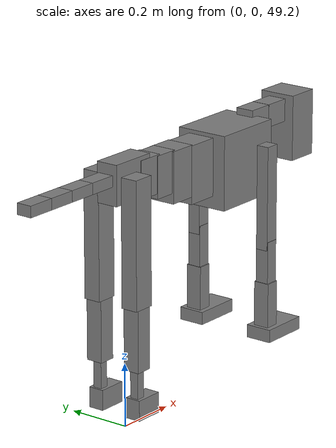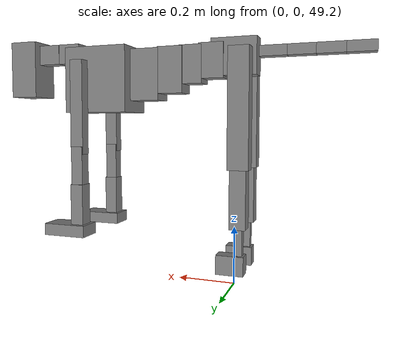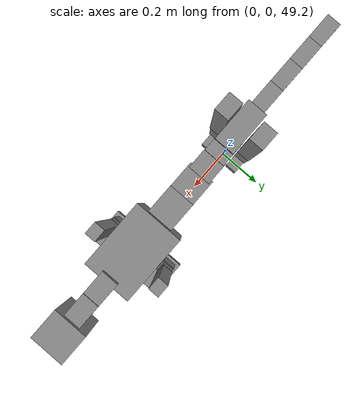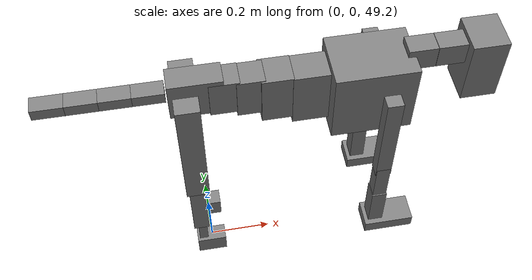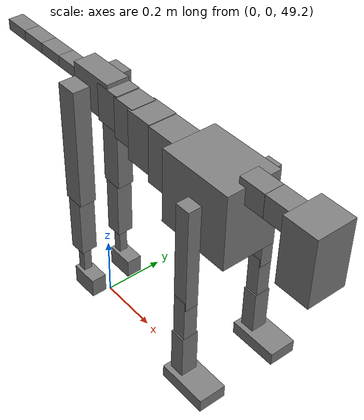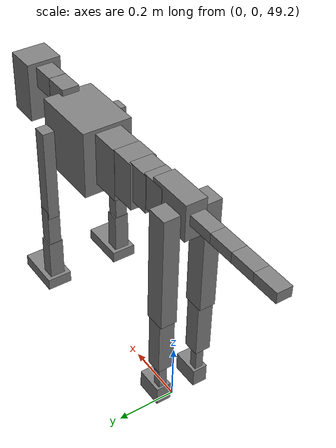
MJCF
<mujoco model="dog">

    <default>
        <joint armature="0.02" stiffness="1" damping="0.2" limited="true"/>
        <geom condim="3" friction="1 0.05 0.05" margin="0.01"/>
        <motor ctrllimited="true" ctrlrange="-1.0 1.0" forcelimited="true" gear="50"/>
    </default>

    <compiler inertiafromgeom="true" angle="radian"/>

    <option timestep="0.016" iterations="50" tolerance="1e-10" solver="Newton" jacobian="dense" cone="pyramidal"/>

    <size nconmax="20000" njmax="60000" nstack="5000000"/>
    <visual>
        <map force="0.1" zfar="30"/>
        <rgba haze="0.15 0.25 0.35 1"/>
        <quality shadowsize="2048"/>
        <global offwidth="800" offheight="800"/>
    </visual>

    <asset>
        <texture type="skybox" builtin="gradient" rgb1="0.3 0.5 0.7" rgb2="0 0 0" width="512" height="512"/>
        <texture name="texplane" type="2d" builtin="checker" rgb1=".2 .3 .4" rgb2=".1 0.15 0.2" width="512" height="512"
                 mark="cross" markrgb=".8 .8 .8"/>
        <texture name="texgeom" type="cube" builtin="flat" mark="cross" width="127" height="1278" rgb1="0.8 0.6 0.4"
                 rgb2="0.8 0.6 0.4" markrgb="1 1 1" random="0.01"/>

        <material name="matplane" reflectance="0.3" texture="texplane" texrepeat="1 1" texuniform="true"/>
        <material name="matgeom" texture="texgeom" texuniform="true" rgba="0.8 0.6 .4 1"/>
    </asset>

    <worldbody>
        <geom name="floor" pos="0 0 0" size="0 0 .25" type="plane" material="matplane" condim="3"/>

        <light directional="false" diffuse=".2 .2 .2" specular="0 0 0" pos="0 0 5" dir="0 0 -1" castshadow="false"/>
        <light mode="targetbodycom" target="torso" directional="false" diffuse=".8 .8 .8" specular="0.3 0.3 0.3"
               pos="0 0 4.0" dir="0 0 -1"/>

        <body name="root" pos="0 0 50">
            <freejoint name="root_1"/>
            <geom type="box" pos="0 0 -0.02" size="0.0774  0.0358  0.063" density="2030"/>

            <body name="spine1" pos="0.054 0 0">
                <joint name="spine1_y" axis="0 1 0" range="0 0.7" limited="true"/>
                <geom type="box" pos="0.02375 0 -0.03" size="0.04375  0.0375  0.05985" density="2030"/>

                <body name="spine2" pos="0.0612 0 0">
                    <joint name="spine2_y" axis="0 1 0" range="-0.15 0.15" limited="true"/>
                    <geom type="box" pos="0.03555  0  -0.04" size="0.04055  0.039  0.06615" density="2030"/>

                    <body name="spine3" pos="0.0730 0 0">
                        <joint name="spine3_y" axis="0 1 0" range="-0.15 0.15" limited="true"/>
                        <geom type="box" pos="0.03555  0  -0.057" size="0.04555  0.0445  0.081" density="2030"/>

                        <body name="spine4" pos="0.0780 0 0">
                            <joint name="spine4_y" axis="0 1 0" range="-0.15 0.15" limited="true"/>
                            <geom type="box" pos="0.05265  0  -0.07" size="0.05265  0.045  0.09135" density="2030"/>

                            <body name="torso" pos="0.1082 0 0">
                                <joint name="torso_y" axis="0 1 0" range="-0.15 0.15" limited="true"/>
                                <geom type="box" pos="0.11925  0  -0.085" size="0.11925  0.085  0.11745"
                                      density="2030"/>

                                <body name="neck1" pos="0.2160  0   0.0180">
                                    <joint name="neck1_y" axis="0 1 0" range="-1.2  -1" limited="true"/>
                                    <geom type="box" pos="0.0423  0  0" size="0.0423  0.03  0.036" density="2325"/>

                                    <body name="neck2" pos="0.0853  0  0">
                                        <joint name="neck2_y" axis="0 1 0" range="0.1  0" limited="true"/>
                                        <geom type="box" pos="0.0423  0  0" size="0.0423  0.03  0.036" density="2325"/>

                                        <body name="head" pos="0.0853  0  0">
                                            <joint name="head_y" axis="0 1 0" range="-0.3  -0.2" limited="true"/>
                                            <geom type="box" pos="0.0531  0  -0.055" size="0.0531  0.06  0.1044"
                                                  density="4030"/>

                                        </body>
                                    </body>
                                </body>

                                <body name="front_shoulder" pos="0.156  0   -0.0480">
                                    <joint name="front_shoulder_y" axis="0 1 0" range="-1 1.5" limited="true"/>
                                    <geom type="box" pos="0 0.13 -0.1383" size="0.0234  0.0200  0.1649" density="1158"/>
                                    <geom type="box" pos="0 -0.13 -0.1383" size="0.0234  0.0200  0.1649"
                                          density="1158"/>

                                    <body name="front_elbow" pos="0  0  -0.2766">
                                        <joint name="front_elbow_y" axis="0 1 0" range="-2 0" limited="true"/>
                                        <geom type="box" pos="0 0.13 -0.0732" size="0.0212  0.0217  0.0732"
                                              density="1081"/>
                                        <geom type="box" pos="0 -0.13 -0.0732" size="0.0212  0.0217  0.0732"
                                              density="1081"/>

                                        <body name="front_wrist" pos="0  0  -0.1464">
                                            <joint name="front_wrist_y" axis="0 1 0" range="-0.2 0" limited="true"/>
                                            <geom type="box" pos="0 0.13 -0.0719" size="0.0231  0.0257  0.0851"
                                                  density="1664"/>
                                            <geom type="box" pos="0 -0.13 -0.0719" size="0.0231  0.0257  0.0851"
                                                  density="1664"/>

                                            <body name="front_finger_end" pos="0  0  -0.1439">
                                                <joint name="front_finger_y" axis="0 1 0" range="-0.4 1"
                                                       limited="true"/>
                                                <geom type="box" pos="0.0428  0.13  -0.0055"
                                                      size="0.0785  0.0428  0.0205" density="1515"/>
                                                <geom type="box" pos="0.0428  -0.13  -0.0055"
                                                      size="0.0785  0.0428  0.0205" density="1515"/>

                                            </body>

                                        </body>
                                    </body>
                                </body>

                            </body>
                        </body>
                    </body>
                </body>
            </body>

            <body name="back_hip" pos="-0.03 0 -0.018">
                <joint name="back_hip_y" axis="0 1 0" range="-1.5 0.3" limited="true"/>
                <geom type="box" pos="0 0.07 -0.1774" size="0.0351  0.0275  0.2002" density="1154"/>
                <geom type="box" pos="0 -0.07 -0.1774" size="0.0351  0.0275  0.2002" density="1154"/>

                <body name="back_knee" pos="0  0  -0.3547">
                    <joint name="back_knee_y" axis="0 1 0" range="0 2.8" limited="true"/>
                    <geom type="box" pos="0 0.07 -0.1011" size="0.0272  0.0268  0.1167" density="1227"/>
                    <geom type="box" pos="0 -0.07 -0.1011" size="0.0272  0.0268  0.1167" density="1227"/>

                    <body name="back_ankle" pos="0  0  -0.2023">
                        <joint name="back_ankle_y" axis="0 1 0" range="-2.2 0" limited="true"/>
                        <geom type="box" pos="0 0.07 -0.0597" size="0.0139  0.0139  0.0709" density="1284"/>
                        <geom type="box" pos="0 -0.07 -0.0597" size="0.0139  0.0139  0.0709" density="1284"/>

                        <body name="back_toe_end" pos="0  0  -0.1193">
                            <joint name="back_toe_y" axis="0 1 0" range="-0.4 1" limited="true"/>
                            <geom type="box" pos="0.0252  0.07  -0.0174" size="0.0462  0.0252  0.0324" density="1515"/>
                            <geom type="box" pos="0.0252  -0.07  -0.0174" size="0.0462  0.0252  0.0324" density="1515"/>

                        </body>
                    </body>
                </body>
            </body>

            <body name="tail1" pos="-0.074 0 -0.006">
                <joint name="tail1_y" axis="0 1 0" range="-0.2 0.2" limited="true"/>
                <geom type="box" pos="-0.0536  0  0" size="0.045  0.025  0.0175" density="1587"/>

                <body name="tail2" pos="-0.09 0 0">
                    <joint name="tail2_y" axis="0 1 0" range="-0.2 0.2" limited="true"/>
                    <geom type="box" pos="-0.0536  0  0" size="0.045  0.025  0.0175" density="1587"/>

                    <body name="tail3" pos="-0.09 0 0">
                        <joint name="tail3_y" axis="0 1 0" range="-0.2 0.2" limited="true"/>
                        <geom type="box" pos="-0.0536  0  0" size="0.045  0.025  0.0175" density="1587"/>

                        <body name="tail4" pos="-0.09 0 0">
                            <joint name="tail4_y" axis="0 1 0" range="-0.2 0.2" limited="true"/>
                            <geom type="box" pos="-0.0536  0  0" size="0.045  0.025  0.0175" density="1587"/>

                        </body>
                    </body>
                </body>
            </body>
        </body>
    </worldbody>

    <actuator>
        <motor joint="spine1_y" forcerange="-150 150     "/>
        <motor joint="spine2_y" forcerange="-150 150     "/>
        <motor joint="spine3_y" forcerange="-150 150     "/>
        <motor joint="spine4_y" forcerange="-150 150     "/>
        <motor joint="torso_y" forcerange="-150 150     "/>
        <motor joint="neck1_y" forcerange="-100 100       "/>
        <motor joint="neck2_y" forcerange="-100 100       "/>
        <motor joint="head_y" forcerange="-150 150       "/>
        <motor joint="front_shoulder_y" forcerange="-122.38 110.90"/>
        <motor joint="front_elbow_y" forcerange="-111.82 145.68"/>
        <motor joint="front_wrist_y" forcerange="-60.81 144.54"/>
        <motor joint="front_finger_y" forcerange="-99.35 89.03"/>
        <motor joint="back_hip_y" forcerange="-302.68 263.89"/>
        <motor joint="back_knee_y" forcerange="-344.77 245.68"/>
        <motor joint="back_angle_y" forcerange="-54.22 68.18"/>
        <motor joint="back_toe_y" forcerange="-71.22 50.41"/>
        <motor joint="tail1_y" forcerange="-50 50     "/>
        <motor joint="tail2_y" forcerange="-50 50     "/>
        <motor joint="tail3_y" forcerange="-50 50     "/>
        <motor joint="tail4_y" forcerange="-50 50     "/>
    </actuator>
</mujoco>
